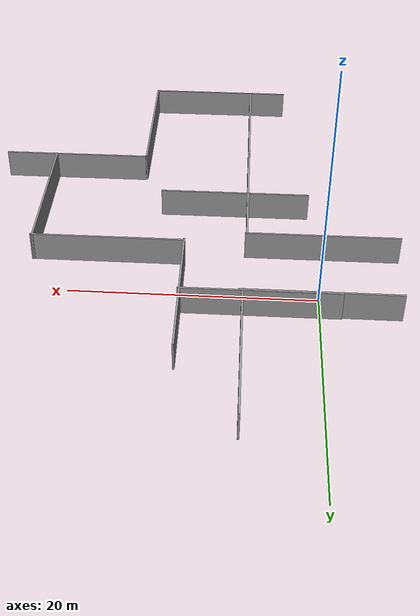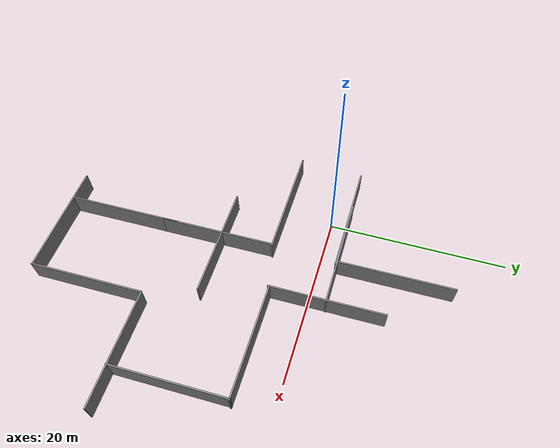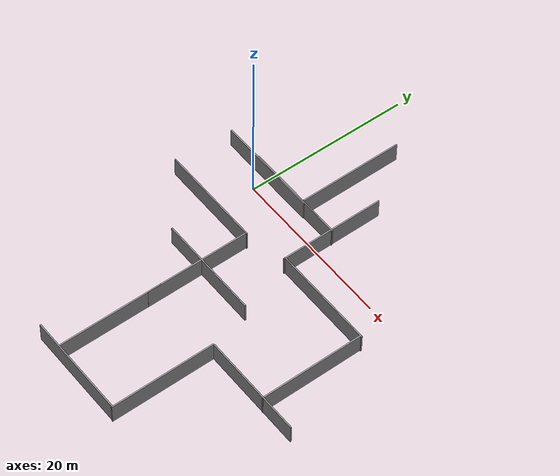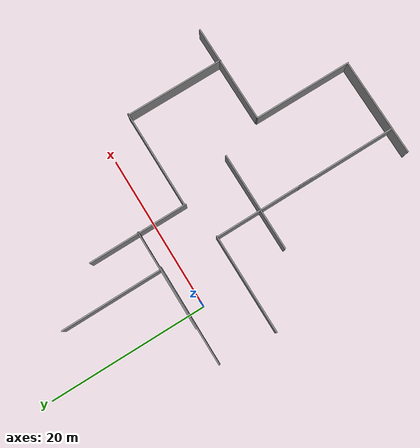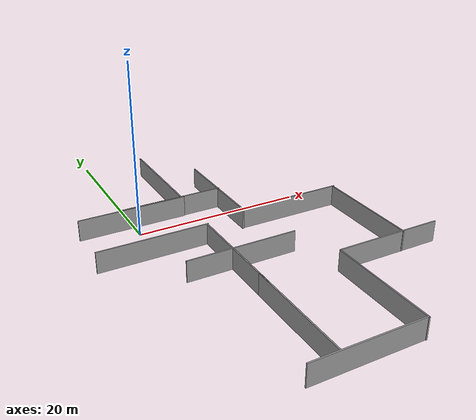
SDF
<sdf version="1.6">
 <world name="default">
  <light name="sun" type="directional">
   <pose>0 0 10 0 -0 0</pose>
   <diffuse>0.8 0.8 0.8 1</diffuse>
   <specular>0.2 0.2 0.2 1</specular>
   <attenuation>
    <range>1000</range>
    <constant>0.9</constant>
    <linear>0.01</linear>
    <quadratic>0.001</quadratic>
   </attenuation>
   <direction>-0.5 0.1 -0.9</direction>
  </light>
  <gravity>0 0 -9.8</gravity>
  <magnetic_field>6e-06 2.3e-05 -4.2e-05</magnetic_field>
  <atmosphere type="adiabatic"/>
  <physics name="default_physics" default="0" type="ode">
   <max_step_size>0.001</max_step_size>
   <real_time_factor>1</real_time_factor>
   <real_time_update_rate>1000</real_time_update_rate>
  </physics>
  <scene><ambient>0.4 0.4 0.4 1</ambient><background>0.7 0.7 0.7 1</background><shadows>1</shadows></scene>
  <spherical_coordinates>
   <surface_model>EARTH_WGS84</surface_model>
   <latitude_deg>0</latitude_deg>
   <longitude_deg>0</longitude_deg>
   <elevation>0</elevation>
   <heading_deg>0</heading_deg>
  </spherical_coordinates>
  <model name="walluse">
   <pose>-0.402663 -5.38696 0 0 -0 0</pose>
   <link name="Wall_0">
    <collision name="Wall_0_Collision">
     <geometry><box><size>12.75 0.15 2.5</size></box></geometry>
     <pose>0 0 1.25 0 -0 0</pose>
    </collision>
    <visual name="Wall_0_Visual">
     <pose>0 0 1.25 0 -0 0</pose>
     <geometry><box><size>12.75 0.15 2.5</size></box></geometry>
     <material>
      <script><uri>file://media/materials/scripts/gazebo.material</uri><name>Gazebo/Grey</name></script>
      <ambient>1 1 1 1</ambient>
     </material>
     <meta><layer>0</layer></meta>
    </visual>
   </link>
   <static>1</static>
  </model>
  <model name="walluse_clone">
   <pose>-0.015742 1.86843 0 0 -0 0</pose>
   <link name="Wall_0">
    <collision name="Wall_0_Collision">
     <geometry><box><size>12.75 0.15 2.5</size></box></geometry>
     <pose>0 0 1.25 0 -0 0</pose>
    </collision>
    <visual name="Wall_0_Visual">
     <pose>0 0 1.25 0 -0 0</pose>
     <geometry><box><size>12.75 0.15 2.5</size></box></geometry>
     <material>
      <script><uri>file://media/materials/scripts/gazebo.material</uri><name>Gazebo/Grey</name></script>
      <ambient>1 1 1 1</ambient>
     </material>
     <meta><layer>0</layer></meta>
    </visual>
   </link>
   <static>1</static>
  </model>
  <model name="walluse_clone_1">
   <pose>9.00253 -29.3041 0 0 -0 0</pose>
   <link name="Wall_0">
    <collision name="Wall_0_Collision">
     <geometry><box><size>12.75 0.15 2.5</size></box></geometry>
     <pose>0 0 1.25 0 -0 0</pose>
    </collision>
    <visual name="Wall_0_Visual">
     <pose>0 0 1.25 0 -0 0</pose>
     <geometry><box><size>12.75 0.15 2.5</size></box></geometry>
     <material>
      <script><uri>file://media/materials/scripts/gazebo.material</uri><name>Gazebo/Grey</name></script>
      <ambient>1 1 1 1</ambient>
     </material>
     <meta><layer>0</layer></meta>
    </visual>
   </link>
   <static>1</static>
  </model>
  <model name="walluse_clone_0">
   <pose>10.8754 2.02396 0 0 -0 1.57672</pose>
   <link name="Wall_0">
    <collision name="Wall_0_Collision">
     <geometry><box><size>12.75 0.15 2.5</size></box></geometry>
     <pose>0 0 1.25 0 -0 0</pose>
    </collision>
    <visual name="Wall_0_Visual">
     <pose>0 0 1.25 0 -0 0</pose>
     <geometry><box><size>12.75 0.15 2.5</size></box></geometry>
     <material>
      <script><uri>file://media/materials/scripts/gazebo.material</uri><name>Gazebo/Grey</name></script>
      <ambient>1 1 1 1</ambient>
     </material>
     <meta><layer>0</layer></meta>
    </visual>
   </link>
   <static>1</static>
  </model>
  <model name="walluse_clone_1_clone">
   <pose>4.66434 1.98266 0 0 -0 0</pose>
   <link name="Wall_0">
    <collision name="Wall_0_Collision">
     <geometry><box><size>12.75 0.15 2.5</size></box></geometry>
     <pose>0 0 1.25 0 -0 0</pose>
    </collision>
    <visual name="Wall_0_Visual">
     <pose>0 0 1.25 0 -0 0</pose>
     <geometry><box><size>12.75 0.15 2.5</size></box></geometry>
     <material>
      <script><uri>file://media/materials/scripts/gazebo.material</uri><name>Gazebo/Grey</name></script>
      <ambient>1 1 1 1</ambient>
     </material>
     <meta><layer>0</layer></meta>
    </visual>
   </link>
   <static>1</static>
  </model>
  <model name="walluse_clone_0_clone_clone">
   <pose>5.98239 8.45043 0 0 -0 1.57672</pose>
   <link name="Wall_0">
    <collision name="Wall_0_Collision">
     <geometry><box><size>12.75 0.15 2.5</size></box></geometry>
     <pose>0 0 1.25 0 -0 0</pose>
    </collision>
    <visual name="Wall_0_Visual">
     <pose>0 0 1.25 0 -0 0</pose>
     <geometry><box><size>12.75 0.15 2.5</size></box></geometry>
     <material>
      <script><uri>file://media/materials/scripts/gazebo.material</uri><name>Gazebo/Grey</name></script>
      <ambient>1 1 1 1</ambient>
     </material>
     <meta><layer>0</layer></meta>
    </visual>
   </link>
   <static>1</static>
  </model>
  <model name="walluse_clone_1_clone_clone_0">
   <pose>17.2356 -4.13812 0 0 -0 0</pose>
   <link name="Wall_0">
    <collision name="Wall_0_Collision">
     <geometry><box><size>12.75 0.15 2.5</size></box></geometry>
     <pose>0 0 1.25 0 -0 0</pose>
    </collision>
    <visual name="Wall_0_Visual">
     <pose>0 0 1.25 0 -0 0</pose>
     <geometry><box><size>12.75 0.15 2.5</size></box></geometry>
     <material>
      <script><uri>file://media/materials/scripts/gazebo.material</uri><name>Gazebo/Grey</name></script>
      <ambient>1 1 1 1</ambient>
     </material>
     <meta><layer>0</layer></meta>
    </visual>
   </link>
   <static>1</static>
  </model>
  <model name="walluse_clone_0_clone_0">
   <pose>5.85185 -11.8072 0 0 -0 1.57672</pose>
   <link name="Wall_0">
    <collision name="Wall_0_Collision">
     <geometry><box><size>12.75 0.15 2.5</size></box></geometry>
     <pose>0 0 1.25 0 -0 0</pose>
    </collision>
    <visual name="Wall_0_Visual">
     <pose>0 0 1.25 0 -0 0</pose>
     <geometry><box><size>12.75 0.15 2.5</size></box></geometry>
     <material>
      <script><uri>file://media/materials/scripts/gazebo.material</uri><name>Gazebo/Grey</name></script>
      <ambient>1 1 1 1</ambient>
     </material>
     <meta><layer>0</layer></meta>
    </visual>
   </link>
   <static>1</static>
  </model>
  <model name="walluse_clone_0_clone_0_clone">
   <pose>23.4569 -10.4273 0 0 -0 1.57672</pose>
   <link name="Wall_0">
    <collision name="Wall_0_Collision">
     <geometry><box><size>12.75 0.15 2.5</size></box></geometry>
     <pose>0 0 1.25 0 -0 0</pose>
    </collision>
    <visual name="Wall_0_Visual">
     <pose>0 0 1.25 0 -0 0</pose>
     <geometry><box><size>12.75 0.15 2.5</size></box></geometry>
     <material>
      <script><uri>file://media/materials/scripts/gazebo.material</uri><name>Gazebo/Grey</name></script>
      <ambient>1 1 1 1</ambient>
     </material>
     <meta><layer>0</layer></meta>
    </visual>
   </link>
   <static>1</static>
  </model>
  <model name="walluse_clone_1_clone_0">
   <pose>6.98219 -11.2069 0 0 -0 0</pose>
   <link name="Wall_0">
    <collision name="Wall_0_Collision">
     <geometry><box><size>12.75 0.15 2.5</size></box></geometry>
     <pose>0 0 1.25 0 -0 0</pose>
    </collision>
    <visual name="Wall_0_Visual">
     <pose>0 0 1.25 0 -0 0</pose>
     <geometry><box><size>12.75 0.15 2.5</size></box></geometry>
     <material>
      <script><uri>file://media/materials/scripts/gazebo.material</uri><name>Gazebo/Grey</name></script>
      <ambient>1 1 1 1</ambient>
     </material>
     <meta><layer>0</layer></meta>
    </visual>
   </link>
   <static>1</static>
  </model>
  <model name="walluse_clone_0_clone_0_clone_clone">
   <pose>15.2744 -23.063 0 0 -0 1.57672</pose>
   <link name="Wall_0">
    <collision name="Wall_0_Collision">
     <geometry><box><size>12.75 0.15 2.5</size></box></geometry>
     <pose>0 0 1.25 0 -0 0</pose>
    </collision>
    <visual name="Wall_0_Visual">
     <pose>0 0 1.25 0 -0 0</pose>
     <geometry><box><size>12.75 0.15 2.5</size></box></geometry>
     <material>
      <script><uri>file://media/materials/scripts/gazebo.material</uri><name>Gazebo/Grey</name></script>
      <ambient>1 1 1 1</ambient>
     </material>
     <meta><layer>0</layer></meta>
    </visual>
   </link>
   <static>1</static>
  </model>
  <model name="walluse_clone_1_clone_clone_0_clone_clone">
   <pose>21.6828 -16.6748 0 0 -0 0</pose>
   <link name="Wall_0">
    <collision name="Wall_0_Collision">
     <geometry><box><size>12.75 0.15 2.5</size></box></geometry>
     <pose>0 0 1.25 0 -0 0</pose>
    </collision>
    <visual name="Wall_0_Visual">
     <pose>0 0 1.25 0 -0 0</pose>
     <geometry><box><size>12.75 0.15 2.5</size></box></geometry>
     <material>
      <script><uri>file://media/materials/scripts/gazebo.material</uri><name>Gazebo/Grey</name></script>
      <ambient>1 1 1 1</ambient>
     </material>
     <meta><layer>0</layer></meta>
    </visual>
   </link>
   <static>1</static>
  </model>
  <model name="walluse_clone_0_clone_0_clone_0">
   <pose>5.90775 -22.8551 0 0 -0 1.57672</pose>
   <link name="Wall_0">
    <collision name="Wall_0_Collision">
     <geometry><box><size>12.75 0.15 2.5</size></box></geometry>
     <pose>0 0 1.25 0 -0 0</pose>
    </collision>
    <visual name="Wall_0_Visual">
     <pose>0 0 1.25 0 -0 0</pose>
     <geometry><box><size>12.75 0.15 2.5</size></box></geometry>
     <material>
      <script><uri>file://media/materials/scripts/gazebo.material</uri><name>Gazebo/Grey</name></script>
      <ambient>1 1 1 1</ambient>
     </material>
     <meta><layer>0</layer></meta>
    </visual>
   </link>
   <static>1</static>
  </model>
 </world>
</sdf>
